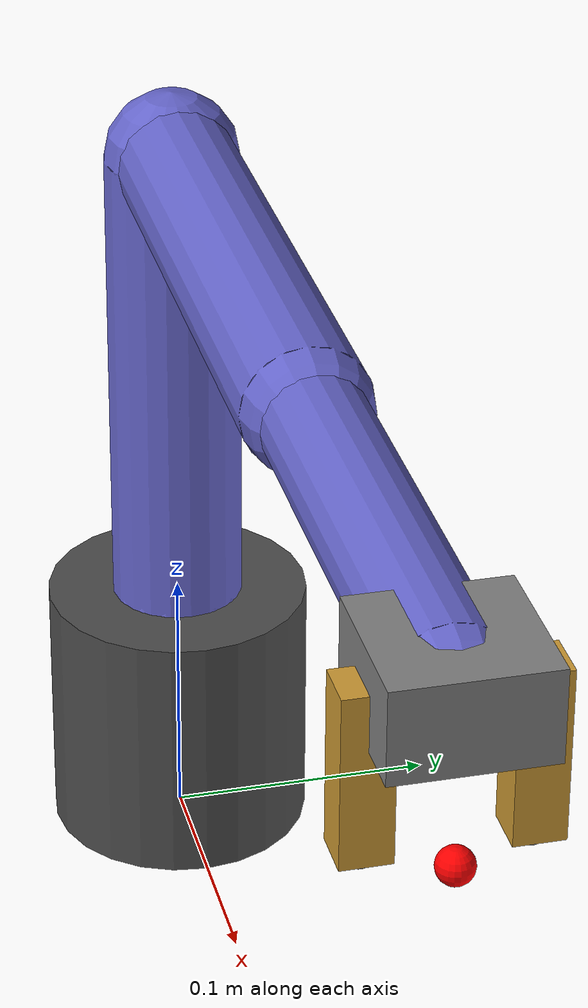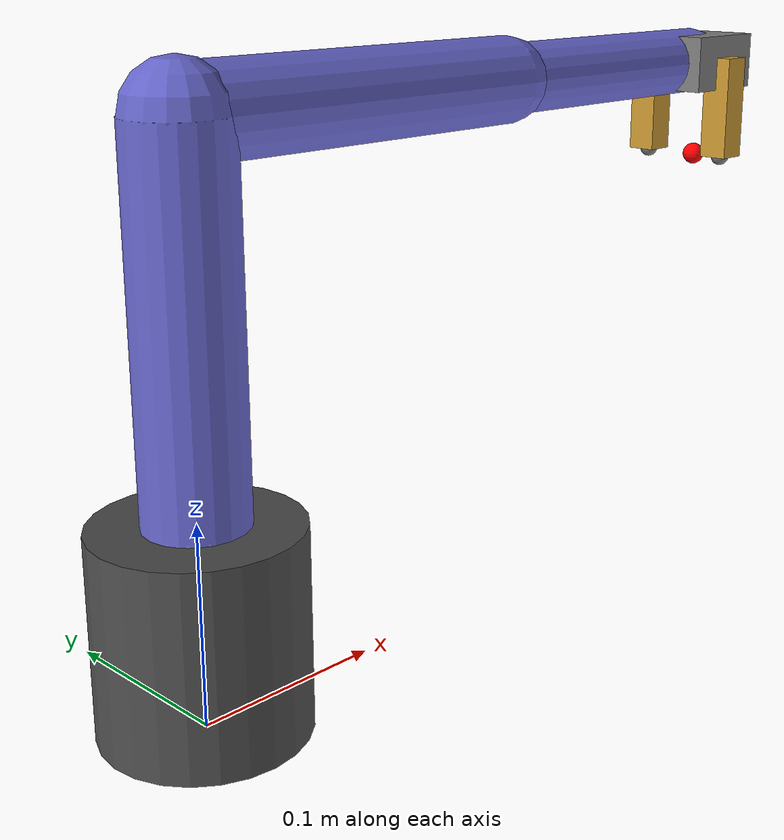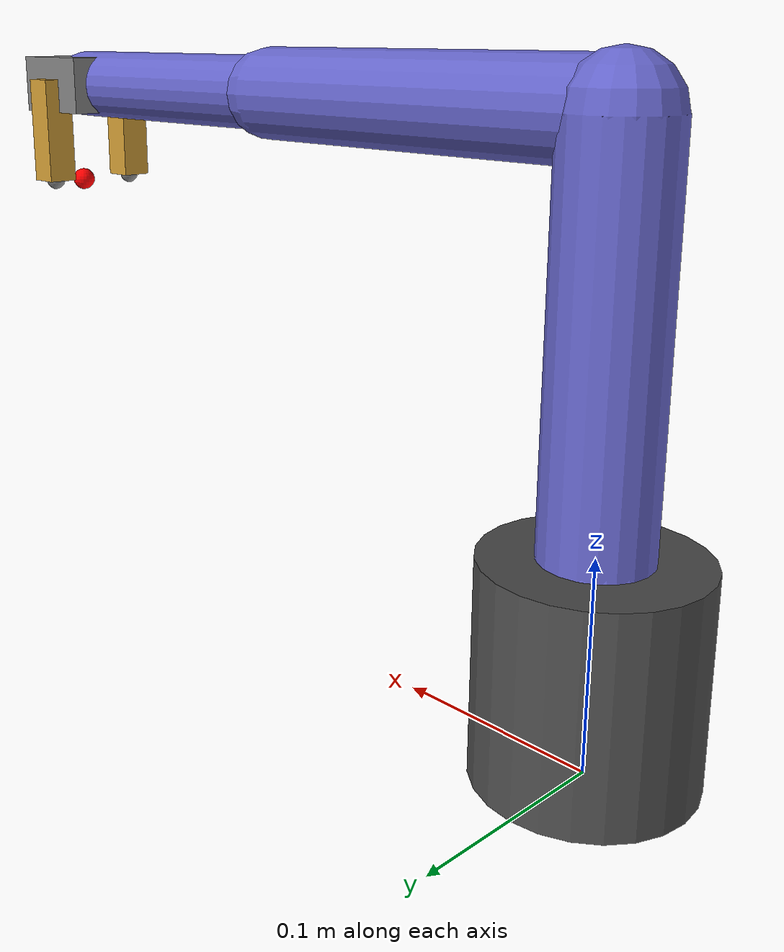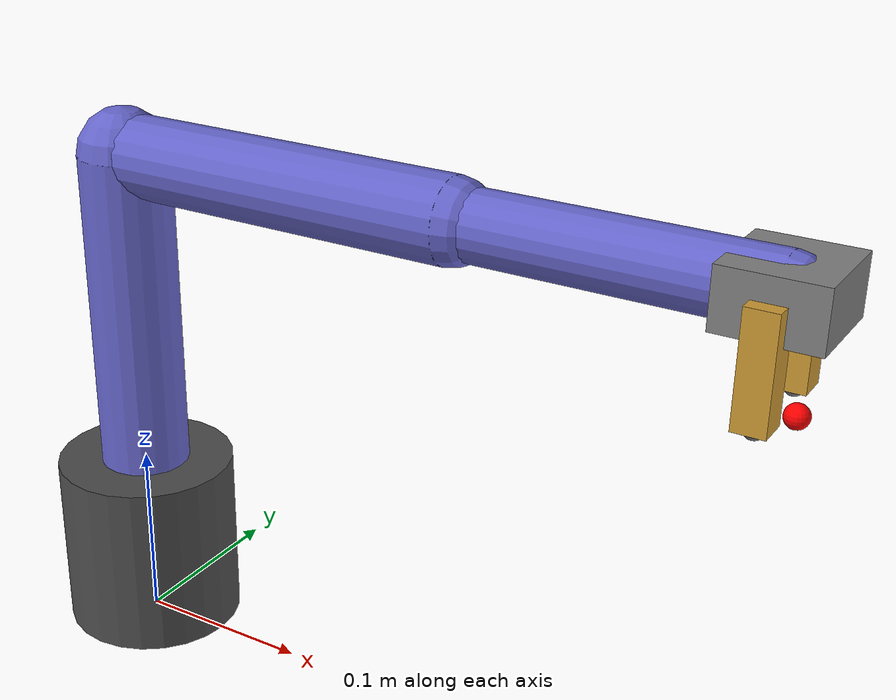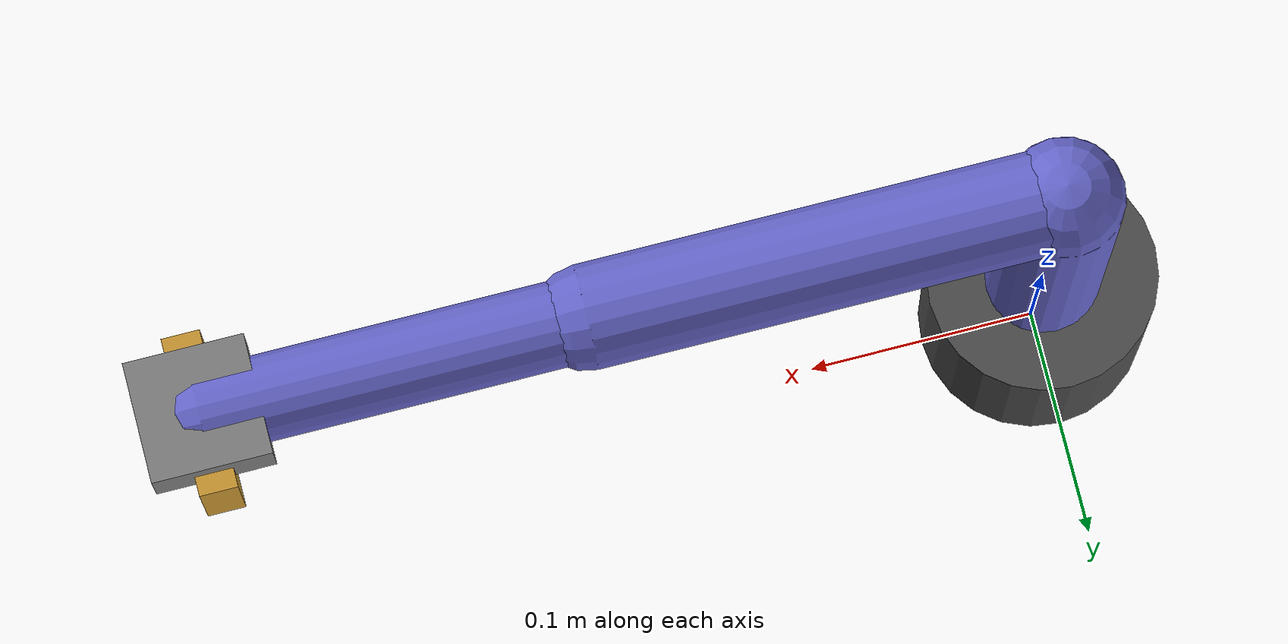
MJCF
<mujoco model="arm">
  <default>
    <joint damping="2.0" armature="0.1"/>
    <geom contype="1" conaffinity="1" friction="1.0 0.1 0.01" rgba="0.4 0.4 0.8 1"/>
  </default>

  <worldbody>
    <!-- Base -->
    <body name="base" pos="0 0 0.05">
      <geom type="cylinder" size="0.05 0.05" rgba="0.3 0.3 0.3 1"/>

      <!-- Joint 1: shoulder rotation (Z axis) -->
      <body name="link1" pos="0 0 0.05">
        <joint name="joint1" type="hinge" axis="0 0 1" range="-3.14 3.14"/>
        <geom type="capsule" fromto="0 0 0 0 0 0.18" size="0.025"/>

        <!-- Joint 2: shoulder pitch (Y axis) -->
        <body name="link2" pos="0 0 0.18">
          <joint name="joint2" type="hinge" axis="0 1 0" range="-1.57 1.57"/>
          <geom type="capsule" fromto="0 0 0 0.20 0 0" size="0.022"/>

          <!-- Joint 3: elbow pitch (Y axis) -->
          <body name="link3" pos="0.20 0 0">
            <joint name="joint3" type="hinge" axis="0 1 0" range="-2.0 2.0"/>
            <geom type="capsule" fromto="0 0 0 0.16 0 0" size="0.018"/>

            <!-- Gripper base -->
            <body name="gripper_base" pos="0.16 0 0">
              <geom type="box" size="0.025 0.025 0.015" rgba="0.5 0.5 0.5 1"/>

              <!-- Left finger -->
              <body name="finger_left" pos="0 -0.025 -0.025">
                <joint name="finger_left_joint" type="slide" axis="0 1 0" range="0 0.03"/>
                <geom type="box" size="0.008 0.008 0.028" rgba="0.8 0.6 0.2 1"/>
                <site name="tip_left" pos="0 0 -0.028" size="0.005"/>
              </body>

              <!-- Right finger -->
              <body name="finger_right" pos="0 0.025 -0.025">
                <joint name="finger_right_joint" type="slide" axis="0 -1 0" range="0 0.03"/>
                <geom type="box" size="0.008 0.008 0.028" rgba="0.8 0.6 0.2 1"/>
                <site name="tip_right" pos="0 0 -0.028" size="0.005"/>
              </body>

              <!-- End effector site -->
              <site name="ee" pos="0.01 0 -0.055" size="0.006" rgba="1 0 0 1"/>
            </body>
          </body>
        </body>
      </body>
    </body>
  </worldbody>

  <actuator>
    <position name="act_j1" joint="joint1"       kp="50" ctrlrange="-3.14 3.14"/>
    <position name="act_j2" joint="joint2"       kp="50" ctrlrange="-1.57 1.57"/>
    <position name="act_j3" joint="joint3"       kp="50" ctrlrange="-2.0  2.0"/>
    <position name="act_grip" joint="finger_left_joint"  kp="20" ctrlrange="0 0.03"/>
    <!-- right finger mirrors left via equality constraint defined in scene.xml -->
  </actuator>

  <sensor>
    <actuatorfrc name="grip_force" actuator="act_grip"/>
    <actuatorfrc name="j1_torque"  actuator="act_j1"/>
    <actuatorfrc name="j2_torque"  actuator="act_j2"/>
    <actuatorfrc name="j3_torque"  actuator="act_j3"/>
  </sensor>
</mujoco>
